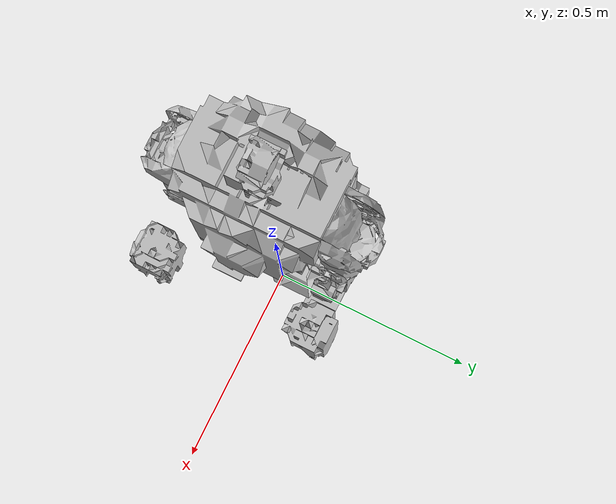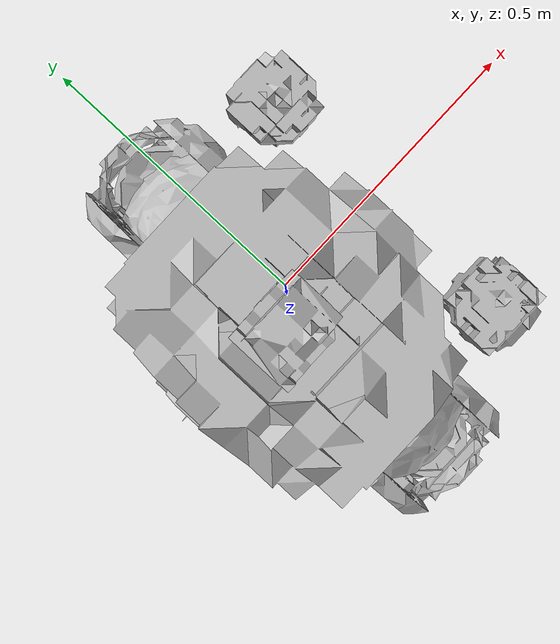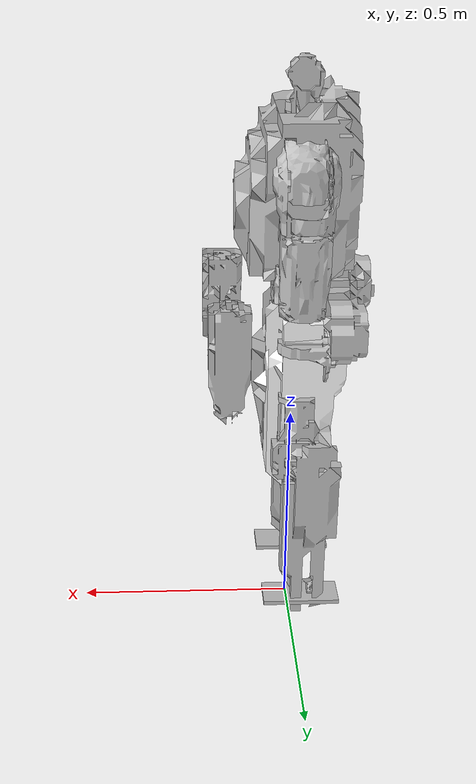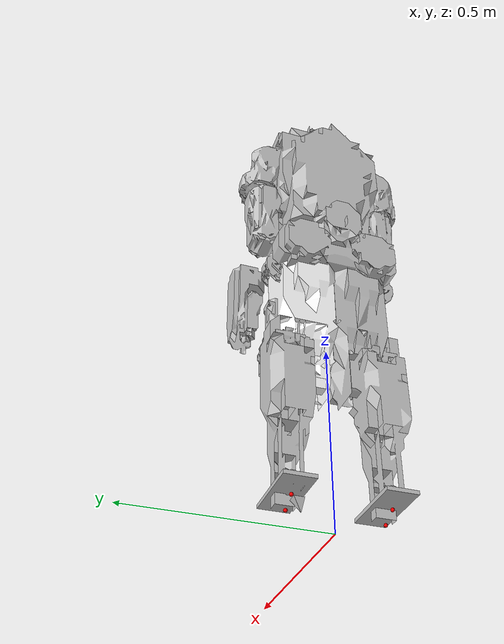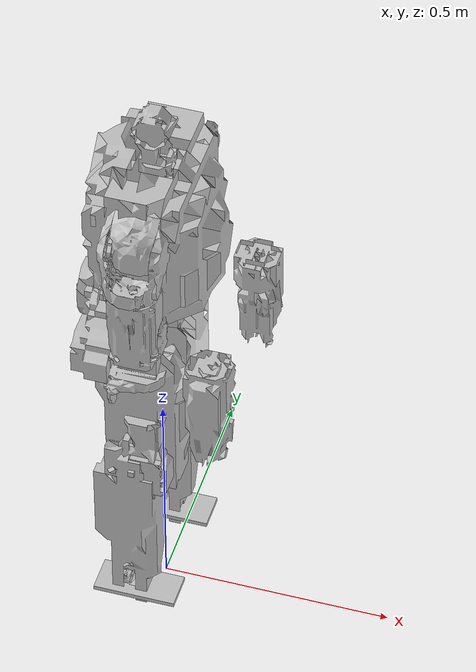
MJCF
<mujoco model="MagicLabZ1Humanoid">
    <compiler angle="radian" meshdir="meshes/" />
    <size njmax="500" nconmax="100" />
    <asset>
        <mesh name="pelvis" file="pelvis.STL" />
        <mesh name="LINK_HIP_PITCH_L" file="LINK_HIP_PITCH_L.STL" />
        <mesh name="LINK_HIP_ROLL_L" file="LINK_HIP_ROLL_L.STL" />
        <mesh name="LINK_HIP_YAW_L" file="LINK_HIP_YAW_L.STL" />
        <mesh name="LINK_KNEE_PITCH_L" file="LINK_KNEE_PITCH_L.STL" />
        <mesh name="LINK_ANKLE_PITCH_L" file="LINK_ANKLE_PITCH_L.STL" />
        <mesh name="LINK_ANKLE_ROLL_L" file="LINK_ANKLE_ROLL_L.STL" />
        <mesh name="LINK_HIP_PITCH_R" file="LINK_HIP_PITCH_R.STL" />
        <mesh name="LINK_HIP_ROLL_R" file="LINK_HIP_ROLL_R.STL" />
        <mesh name="LINK_HIP_YAW_R" file="LINK_HIP_YAW_R.STL" />
        <mesh name="LINK_KNEE_PITCH_R" file="LINK_KNEE_PITCH_R.STL" />
        <mesh name="LINK_ANKLE_PITCH_R" file="LINK_ANKLE_PITCH_R.STL" />
        <mesh name="LINK_ANKLE_ROLL_R" file="LINK_ANKLE_ROLL_R.STL" />
        <mesh name="link_wy" file="link_wy.STL" />
        <mesh name="link_la1" file="link_la1.STL" />
        <mesh name="link_la2" file="link_la2.STL" />
        <mesh name="link_la3" file="link_la3.STL" />
        <mesh name="link_la4" file="link_la4.STL" />
        <mesh name="link_la5" file="link_la5.STL" />
        <mesh name="link_ra1" file="link_ra1.STL" />
        <mesh name="link_ra2" file="link_ra2.STL" />
        <mesh name="link_ra3" file="link_ra3.STL" />
        <mesh name="link_ra4" file="link_ra4.STL" />
        <mesh name="link_ra5" file="link_ra5.STL" />
        <mesh name="link_hy" file="link_hy.STL" />
        <texture type="2d" name="groundplane" builtin="checker" mark="edge" rgb1="0.2 0.3 0.4" rgb2="0.1 0.2 0.3" markrgb="1 1 1" width="300" height="300"/>
        <material name="MatGnd" texture="groundplane" texuniform="true" texrepeat="5 5" reflectance="0.2"/>
    </asset>
    <option timestep="0.002">
        <flag multiccd="disable"/>
    </option>
    <visual>
        <map fogstart="2" fogend="30" force="0.02"/>
        <headlight diffuse="0.6 0.6 0.6" ambient="0.3 0.3 0.3" specular="0 0 0"/>
        <rgba haze="0.15 0.25 0.35 1" contactforce="1 0 0 0.8" com="1 0 0 0.8"/>
        <scale forcewidth="0.05" contactwidth="0.1" contactheight="0.1"/>
    </visual>

    <default>
        <site type="sphere" size="0.005" rgba="1 0 0 1"/>
        <joint damping="10"/>
        <geom contype="0" conaffinity="1" friction="1 1 1" margin="0.001" type="mesh" solref="-500 -800" />
    </default>

    <worldbody>
        <light name="spotlight" mode="trackcom" target="pelvis" pos="0 -0.2 2" dir="0 0 -1" directional="true" cutoff="30"/>
        <!-- Ground is provided by the task terrain config. Keep the robot asset worldbody free of its own floor
             so the repo does not render and collide against two overlapping planes. -->

        <camera name="track" pos="1 1 1" zaxis="0 -1 0" mode="track"/>
        <body name="pelvis" pos="0 0 0.75">
            <inertial pos="0.0001 0 0.0044" quat="0.707107 0.707107 0 0" mass="3.4083" diaginertia="0.0095 0.0094 0.0056" />
            <joint name="folating_base" type="free" />
            <geom type="mesh" contype="0" conaffinity="0" group="1" rgba="0.75294 0.75294 0.75294 1" mesh="pelvis" />
            <geom type="mesh" rgba="0.75294 0.75294 0.75294 1" mesh="pelvis" />
            <body name="LINK_HIP_PITCH_L" pos="0 0.06875 0">
                <inertial pos="-0.0002 0.0495 -0.0399" quat="0.951641 0.307212 0 0" mass="1.5089" diaginertia="0.002 0.00181623 0.00118377" />
                <joint name="JOINT_HIP_PITCH_L" pos="0 0 0" axis="0 1 0" limited="true" range="-2.7925 2.7925" />
                <geom type="mesh" contype="0" conaffinity="0" group="1" rgba="1 1 1 1" mesh="LINK_HIP_PITCH_L" />
                <geom type="mesh" rgba="1 1 1 1" mesh="LINK_HIP_PITCH_L" />
                <body name="LINK_HIP_ROLL_L" pos="0 0.053724 -0.045579">
                    <inertial pos="0.0066 -0.0001 -0.0869" quat="0.968946 0 0.247273 0" mass="1.9215" diaginertia="0.00388217 0.0036 0.00221783" />
                    <joint name="JOINT_HIP_ROLL_L" pos="0 0 0" axis="1 0 0" limited="true" range="-0.524 2.967" />
                    <geom type="mesh" contype="0" conaffinity="0" group="1" rgba="0.75294 0.75294 0.75294 1" mesh="LINK_HIP_ROLL_L" />
                    <geom type="mesh" rgba="0.75294 0.75294 0.75294 1" mesh="LINK_HIP_ROLL_L" />
                    <body name="LINK_HIP_YAW_L" pos="-0.00084052 0 -0.1255">
                        <inertial pos="-0.0188 -0.0041 -0.0763" quat="0.97117 -0.0537438 0.205083 -0.109001" mass="0.9002" diaginertia="0.00401624 0.00379582 0.00158794" />
                        <joint name="JOINT_HIP_YAW_L" pos="0 0 0" axis="0 0 1" limited="true" range="-2.7925 2.7925" />
                        <geom type="mesh" contype="0" conaffinity="0" group="1" rgba="0.75294 0.75294 0.75294 1" mesh="LINK_HIP_YAW_L" />
                        <geom type="mesh" rgba="0.75294 0.75294 0.75294 1" mesh="LINK_HIP_YAW_L" />
                        <body name="LINK_KNEE_PITCH_L" pos="-0.052111 0 -0.13729">
                            <inertial pos="0.0009 -0.0007 -0.101" quat="0.70981 -3.95743e-05 -0.00819614 0.704345" mass="3.7275" diaginertia="0.0412046 0.0406046 0.00639073" />
                            <joint name="JOINT_KNEE_PITCH_L" pos="0 0 0" axis="0 1 0" limited="true" range="0 2.653" />
                            <geom type="mesh" contype="0" conaffinity="0" group="1" rgba="0.75294 0.75294 0.75294 1" mesh="LINK_KNEE_PITCH_L" />
                            <geom type="mesh" rgba="0.75294 0.75294 0.75294 1" mesh="LINK_KNEE_PITCH_L" />
                            <body name="LINK_ANKLE_PITCH_L" pos="0 0 -0.34">
                                <inertial pos="0.00094063 5.0401e-07 -0.0083154" quat="0.5 0.5 0.5 0.5" mass="0.048544" diaginertia="1.12e-05 1.1e-05 1.033e-05" />
                                <joint name="JOINT_ANKLE_PITCH_L" pos="0 0 0" axis="0 1 0" limited="true" range="-0.873 0.524" />
                                <geom type="mesh" contype="0" conaffinity="0" group="1" rgba="0.75294 0.75294 0.75294 1" mesh="LINK_ANKLE_PITCH_L" />
                                <geom type="mesh" rgba="0.75294 0.75294 0.75294 1" mesh="LINK_ANKLE_PITCH_L" />
                                <body name="LINK_ANKLE_ROLL_L" pos="0 0 -0.018">
                                    <inertial pos="0.041316 0.00048241 -0.031752" quat="0 0.724505 0 0.68927" mass="0.7019" diaginertia="0.00240499 0.0023 0.000395012" />
                                    <joint name="JOINT_ANKLE_ROLL_L" pos="0 0 0" axis="1 0 0" limited="true" range="-0.262 0.262" />
                                    <geom name="l_foot" rgba="0.75294 0.75294 0.75294 1" size="0.09 0.04 0.005" pos="0.03 0.0 -0.01" group="2" type="box"/>
                                    <site name="l_foot_center" pos="0.0 0 -0.03"/>
                                    <site name="left_FT" pos="0.04 0.0 -0.05" quat="0 0 1 0" />
                                    <body name="LINK_FOOT_L" pos="0 0 -0.04476">
                                        <body name="LINK_TOE_L" pos="0.13 0 0" />
                                    </body>
                                </body>
                            </body>
                        </body>
                    </body>
                </body>
            </body>
            <body name="LINK_HIP_PITCH_R" pos="0 -0.06875 0">
                <inertial pos="-0.0002 -0.0492 -0.0399" quat="0.951641 -0.307212 0 0" mass="1.5089" diaginertia="0.002 0.00181623 0.00118377" />
                <joint name="JOINT_HIP_PITCH_R" pos="0 0 0" axis="0 1 0" limited="true" range="-2.7925 2.7925" />
                <geom type="mesh" contype="0" conaffinity="0" group="1" rgba="0.75294 0.75294 0.75294 1" mesh="LINK_HIP_PITCH_R" />
                <geom type="mesh" rgba="0.75294 0.75294 0.75294 1" mesh="LINK_HIP_PITCH_R" />
                <body name="LINK_HIP_ROLL_R" pos="0 -0.053724 -0.045579">
                    <inertial pos="0.0069 0.0029 -0.0869" quat="0.968946 0 0.247273 0" mass="1.9215" diaginertia="0.00388217 0.0036 0.00221783" />
                    <joint name="JOINT_HIP_ROLL_R" pos="0 0 0" axis="1 0 0" limited="true" range="-2.967 0.524" />
                    <geom type="mesh" contype="0" conaffinity="0" group="1" rgba="0.75294 0.75294 0.75294 1" mesh="LINK_HIP_ROLL_R" />
                    <geom type="mesh" rgba="0.75294 0.75294 0.75294 1" mesh="LINK_HIP_ROLL_R" />
                    <body name="LINK_HIP_YAW_R" pos="-0.00050599 0.0029213 -0.12555">
                        <inertial pos="-0.0212 0.0102 -0.0829" quat="0.976467 0.0424683 0.210067 0.0241081" mass="1.2314" diaginertia="0.00534507 0.00521576 0.00213917" />
                        <joint name="JOINT_HIP_YAW_R" pos="0 0 0" axis="0 0 1" limited="true" range="-2.7925 2.7925" />
                        <geom type="mesh" contype="0" conaffinity="0" group="1" rgba="0.75294 0.75294 0.75294 1" mesh="LINK_HIP_YAW_R" />
                        <geom type="mesh" rgba="0.75294 0.75294 0.75294 1" mesh="LINK_HIP_YAW_R" />
                        <body name="LINK_KNEE_PITCH_R" pos="-0.052111 0 -0.13729">
                            <inertial pos="0.0009 0.0009 -0.101" quat="0.705029 -0.00718436 -0.00106635 0.709141" mass="3.7292" diaginertia="0.0412026 0.0406047 0.00639274" />
                            <joint name="JOINT_KNEE_PITCH_R" pos="0 0 0" axis="0 1 0" limited="true" range="0 2.653" />
                            <geom type="mesh" contype="0" conaffinity="0" group="1" rgba="0.75294 0.75294 0.75294 1" mesh="LINK_KNEE_PITCH_R" />
                            <geom type="mesh" rgba="0.75294 0.75294 0.75294 1" mesh="LINK_KNEE_PITCH_R" />
                            <body name="LINK_ANKLE_PITCH_R" pos="0 0 -0.34">
                                <inertial pos="0.0009 0 -0.0083" quat="0.5 0.5 0.5 0.5" mass="0.048544" diaginertia="1.12e-05 1.1e-05 1.033e-05" />
                                <joint name="JOINT_ANKLE_PITCH_R" pos="0 0 0" axis="0 1 0" limited="true" range="-0.873 0.524" />
                                <geom type="mesh" contype="0" conaffinity="0" group="1" rgba="0.75294 0.75294 0.75294 1" mesh="LINK_ANKLE_PITCH_R" />
                                <geom type="mesh" rgba="0.75294 0.75294 0.75294 1" mesh="LINK_ANKLE_PITCH_R" />
                                <body name="LINK_ANKLE_ROLL_R" pos="0 0 -0.018">
                                    <inertial pos="0.041294 -0.0010615 -0.031752" quat="0 0.724505 0 0.68927" mass="0.70183" diaginertia="0.00240499 0.0023 0.000395012" />
                                    <joint name="JOINT_ANKLE_ROLL_R" pos="0 0 0" axis="1 0 0" limited="true" range="-0.262 0.262" />
                                    <geom name="r_foot" rgba="0.75294 0.75294 0.75294 1" size="0.09 0.04 0.005" pos="0.03 0.0 -0.01" group="2" type="box"/>
                                    <site name="r_foot_center" pos="0.0 0 -0.03"/>
                                    <site name="right_FT" pos="0.04 0.0 -0.05" quat="0 0 1 0" />
                                    <body name="LINK_FOOT_R" pos="0 0 -0.04476">
                                        <body name="LINK_TOE_R" pos="0.13 0 0" />
                                    </body>
                                </body>
                            </body>
                        </body>
                    </body>
                </body>
            </body>
            <body name="link_wy" pos="0 0 0.0619">
                <inertial pos="0.0061 0.0003 0.1879" quat="0.999977 0 0.00682264 0" mass="9.8779" diaginertia="0.15562 0.1368 0.0456795" />
                <joint name="joint_wy" pos="0 0 0" axis="0 0 1" limited="true" range="-2.79 2.79" />
                <geom type="mesh" contype="0" conaffinity="0" group="1" rgba="0.75294 0.75294 0.75294 1" mesh="link_wy" />
                <geom type="mesh" rgba="0.75294 0.75294 0.75294 1" mesh="link_wy" />
                <body name="link_hy" pos="0 0 0.4889">
                    <inertial pos="0.0079 -0.0004 0.0262" quat="0.707107 0 0 0.707107" mass="0.7987" diaginertia="0.0022 0.0017 0.0017" />
                    <joint name="joint_hy" pos="0 0 0" axis="0 0 1" limited="true" range="-0.6981 0.6981" />
                    <geom type="mesh" contype="0" conaffinity="0" group="1" rgba="0.75294 0.75294 0.75294 1" mesh="link_hy" />
                    <geom type="mesh" rgba="0.75294 0.75294 0.75294 1" mesh="link_hy" />
                </body>
                <body name="link_la1" pos="0 0.11963 0.3208">
                    <inertial pos="0.0033 0.0422 -0.0117" quat="0.83147 0.55557 0 0" mass="0.8939" diaginertia="0.001 0.000941421 0.000658579" />
                    <joint name="joint_la1" pos="0 0 0" axis="0 0.992546 -0.12187" limited="true" range="-2.88 2.88" />
                    <geom type="mesh" contype="0" conaffinity="0" group="1" rgba="0.75294 0.75294 0.75294 1" mesh="link_la1" />
                    <geom type="mesh" rgba="0.75294 0.75294 0.75294 1" mesh="link_la1" />
                    <body name="link_la2" pos="0 0.047187 -0.013786">
                        <inertial pos="-0.0006 0.0016 -0.0673" quat="0.707107 0 0 0.707107" mass="0.7787" diaginertia="0.0013 0.0012 0.0007" />
                        <joint name="joint_la2" pos="0 0 0" axis="1 0 0" limited="true" range="-0.175 2.2515" />
                        <geom type="mesh" contype="0" conaffinity="0" group="1" rgba="0.75294 0.75294 0.75294 1" mesh="link_la2" />
                        <geom type="mesh" rgba="0.75294 0.75294 0.75294 1" mesh="link_la2" />
                        <body name="link_la3" pos="0 0 -0.1171">
                            <inertial pos="0.0035409 -0.00073964 -0.044592" quat="0.99329 0 -0.115653 0" mass="0.35928" diaginertia="0.000923607 0.0008 0.000476393" />
                            <joint name="joint_la3" pos="0 0 0" axis="0 0 1" limited="true" range="-2.618 2.618" />
                            <geom type="mesh" contype="0" conaffinity="0" group="1" rgba="0.75294 0.75294 0.75294 1" mesh="link_la3" />
                            <geom type="mesh" rgba="0.75294 0.75294 0.75294 1" mesh="link_la3" />
                            <body name="link_la4" pos="0.01924 0 -0.0979">
                                <inertial pos="0.0447 -0.0015 -0.0086458" quat="0.418542 0.595366 0.484402 0.485507" mass="1.48" diaginertia="0.00460603 0.00450553 0.00108844" />
                                <joint name="joint_la4" pos="0 0 0" axis="0 1 0" limited="true" range="-0.96 2.0944" />
                                <geom type="mesh" contype="0" conaffinity="0" group="1" rgba="0.75294 0.75294 0.75294 1" mesh="link_la4" />
                                <geom type="mesh" rgba="0.75294 0.75294 0.75294 1" mesh="link_la4" />
                                <body name="link_la5" pos="0.138 0 -0.017415">
                                    <inertial pos="0.025808 0.00016898 0.00074869" quat="0.5 0.5 0.5 0.5" mass="0.2728" diaginertia="0.0003 0.0003 0.0002" />
                                    <joint name="joint_la5" pos="0 0 0" axis="1 0 0" limited="true" range="-2.618 2.618" />
                                    <geom type="mesh" contype="0" conaffinity="0" group="1" rgba="0.75294 0.75294 0.75294 1" mesh="link_la5" />
                                    <geom type="mesh" rgba="0.75294 0.75294 0.75294 1" mesh="link_la5" />
                                    <body name="LINK_HAND_L" pos="0.138 0 0" />
                                </body>
                            </body>
                        </body>
                    </body>
                </body>
                <body name="link_ra1" pos="0 -0.11963 0.3208">
                    <inertial pos="0.0032 -0.0422 -0.0117" quat="0.55557 0.83147 0 0" mass="0.8976" diaginertia="0.001 0.000941421 0.000658579" />
                    <joint name="joint_ra1" pos="0 0 0" axis="0 0.992546 -0.12187" limited="true" range="-2.88 2.88" />
                    <geom type="mesh" contype="0" conaffinity="0" group="1" rgba="0.75294 0.75294 0.75294 1" mesh="link_ra1" />
                    <geom type="mesh" rgba="0.75294 0.75294 0.75294 1" mesh="link_ra1" />
                    <body name="link_ra2" pos="0 -0.047187 -0.013786">
                        <inertial pos="-0.0005 -0.0016 -0.0678" quat="0.707107 0 0 0.707107" mass="0.7868" diaginertia="0.0013 0.0012 0.0007" />
                        <joint name="joint_ra2" pos="0 0 0" axis="1 0 0" limited="true" range="-2.2515 0.175" />
                        <geom type="mesh" contype="0" conaffinity="0" group="1" rgba="0.75294 0.75294 0.75294 1" mesh="link_ra2" />
                        <geom type="mesh" rgba="0.75294 0.75294 0.75294 1" mesh="link_ra2" />
                        <body name="link_ra3" pos="0 0 -0.1171">
                            <inertial pos="0.0035415 0.0007384 -0.044591" quat="0.99329 0 -0.115653 0" mass="0.3593" diaginertia="0.000923607 0.0008 0.000476393" />
                            <joint name="joint_ra3" pos="0 0 0" axis="0 0 1" limited="true" range="-2.618 2.618" />
                            <geom type="mesh" contype="0" conaffinity="0" group="1" rgba="0.75294 0.75294 0.75294 1" mesh="link_ra3" />
                            <geom type="mesh" rgba="0.75294 0.75294 0.75294 1" mesh="link_ra3" />
                            <body name="link_ra4" pos="0.01924 0 -0.0979">
                                <inertial pos="0.0447 0.0015 -0.0087" quat="0.418542 0.595366 0.484402 0.485507" mass="1.48" diaginertia="0.00460603 0.00450553 0.00108844" />
                                <joint name="joint_ra4" pos="0 0 0" axis="0 1 0" limited="true" range="-2.0944 0.96" />
                                <geom type="mesh" contype="0" conaffinity="0" group="1" rgba="0.75294 0.75294 0.75294 1" mesh="link_ra4" />
                                <geom type="mesh" rgba="0.75294 0.75294 0.75294 1" mesh="link_ra4" />
                                <body name="link_ra5" pos="0.138 0 -0.017415">
                                    <inertial pos="0.025808 -0.0001686 0.00074876" quat="0.5 0.5 0.5 0.5" mass="0.27279" diaginertia="0.0003 0.0003 0.0002" />
                                    <joint name="joint_ra5" pos="0 0 0" axis="1 0 0" limited="true" range="-2.618 2.618" />
                                    <geom type="mesh" contype="0" conaffinity="0" group="1" rgba="0.75294 0.75294 0.75294 1" mesh="link_ra5" />
                                    <geom type="mesh" rgba="0.75294 0.75294 0.75294 1" mesh="link_ra5" />
                                    <body name="LINK_HAND_R" pos="0.138 0 0" />
                                </body>
                            </body>
                        </body>
                    </body>
                </body>
            </body>
            <!-- imu at body base -->
            <body name="imu_link_at_pelvis" pos="0 0 0">
                <inertial pos="0 0 0" mass="0.1" diaginertia="0.000001 0.000001 0.000001" />
                <geom name="imu_link" size="0.01 0.01 0.01" pos="0 0 0" type="box" />
                <site name="imu_sensor_at_pelvis" type="box" pos="0 0 0" size=".02 .02 .02" rgba=".9 .1 .9 1"/>
            </body>
        </body>
    </worldbody>
  <actuator>
        <motor name="left_hip_pitch_actuator" joint="JOINT_HIP_PITCH_L"/>
        <motor name="left_hip_roll_actuator" joint="JOINT_HIP_ROLL_L"/>
        <motor name="left_hip_yaw_actuator" joint="JOINT_HIP_YAW_L"/>
        <motor name="left_knee_actuator" joint="JOINT_KNEE_PITCH_L"/>
        <motor name="left_ankle_pitch_actuator" joint="JOINT_ANKLE_PITCH_L"/>
        <motor name="left_ankle_roll_actuator" joint="JOINT_ANKLE_ROLL_L"/>

        <motor name="right_hip_pitch_actuator" joint="JOINT_HIP_PITCH_R"/>
        <motor name="right_hip_roll_actuator" joint="JOINT_HIP_ROLL_R"/>
        <motor name="right_hip_yaw_actuator" joint="JOINT_HIP_YAW_R"/>
        <motor name="right_knee_actuator" joint="JOINT_KNEE_PITCH_R"/>
        <motor name="right_ankle_pitch_actuator" joint="JOINT_ANKLE_PITCH_R"/>
        <motor name="right_ankle_roll_actuator" joint="JOINT_ANKLE_ROLL_R"/>

        <motor name="wrist_yaw_actuator" joint="joint_wy"/>

        <motor name="head_yaw_actuator" joint="joint_hy"/>

        <motor name="left_shoulder_pitch_actuator" joint="joint_la1"/>
        <motor name="left_shoulder_roll_actuator" joint="joint_la2"/>
        <motor name="left_shoulder_yaw_actuator" joint="joint_la3"/>
        <motor name="left_elbow_actuator" joint="joint_la4"/>
        <motor name="left_hand_yaw_actuator" joint="joint_la5"/>

        <motor name="right_shoulder_pitch_actuator" joint="joint_ra1"/>
        <motor name="right_shoulder_roll_actuator" joint="joint_ra2"/>
        <motor name="right_shoulder_yaw_actuator" joint="joint_ra3"/>
        <motor name="right_elbow_actuator" joint="joint_ra4"/>
        <motor name="right_hand_yaw_actuator" joint="joint_ra5"/>
  </actuator>

  <sensor>
        <accelerometer name="imu_local_acc_at_pelvis" site="imu_sensor_at_pelvis"/>
        <gyro name="imu_local_gyro_at_pelvis" site="imu_sensor_at_pelvis"/>
  </sensor>
</mujoco>
